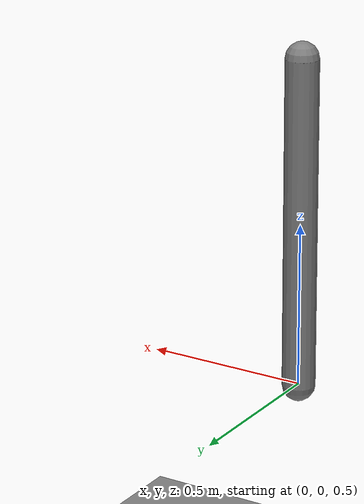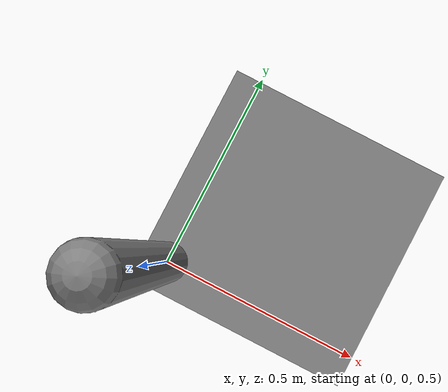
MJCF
<mujoco model="simple_pendulum">

    <option timestep="0.002" integrator="RK4" gravity="0 0 -9.81">
        <flag energy="enable"/>
    </option>

    <worldbody>

        <!-- 地面 -->
        <geom
            name="ground"
            type="plane"
            size="5 5 0.1"
            pos="0 0 0"/>

        <!-- 摆（悬挂点抬高到 z=1.5，杆端不碰地面） -->
        <body name="pendulum" pos="0 0 1.5">

            <!-- 转动关节 -->
            <joint
                  name="hinge"
                  type="hinge"
                  axis="0 1 0"/>

            <!-- 摆杆（显式质量 0.3 kg，默认密度下杆会重达 ~8 kg 导致 PD 增益失效） -->
            <geom
                name="rod"
                type="capsule"
                fromto="0 0 0  0 0 -1"
                size="0.05"
                mass="0.3"/>

        </body>

    </worldbody>

    <actuator>

        <motor
            name="pendulum_motor"
            joint="hinge"
            gear="1"/>

    </actuator>

</mujoco>
